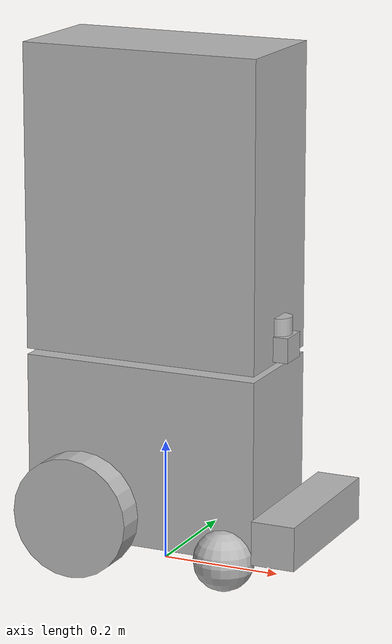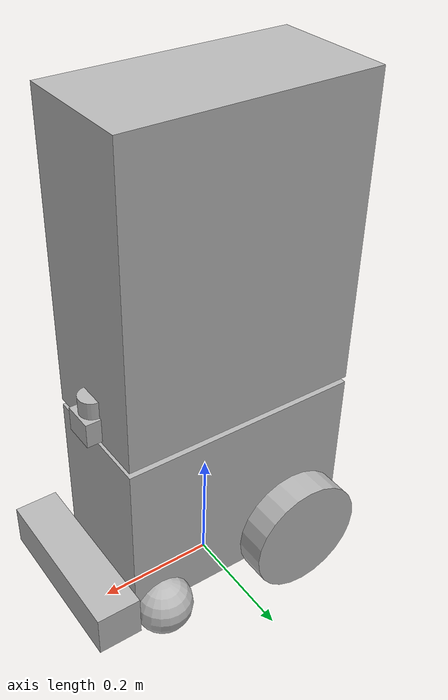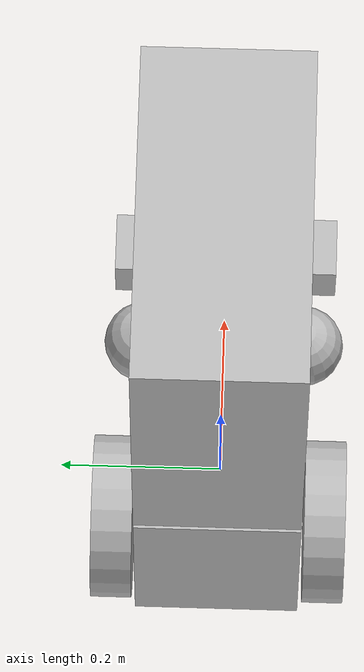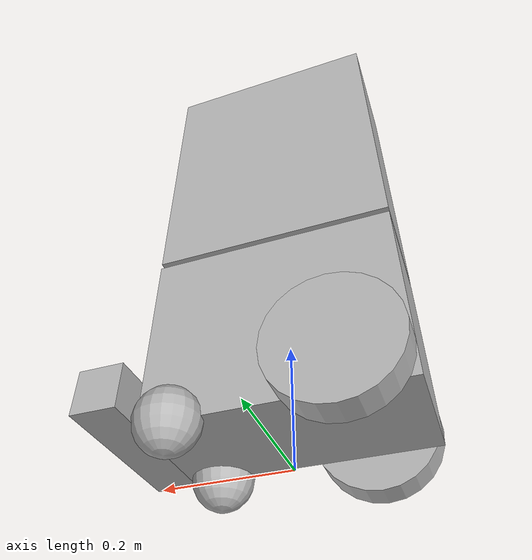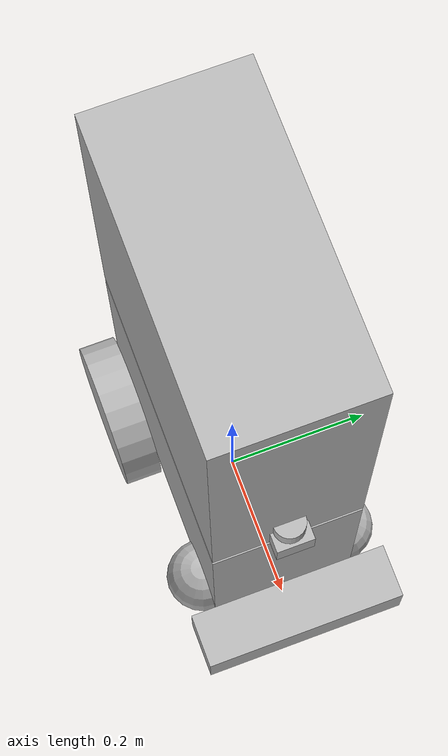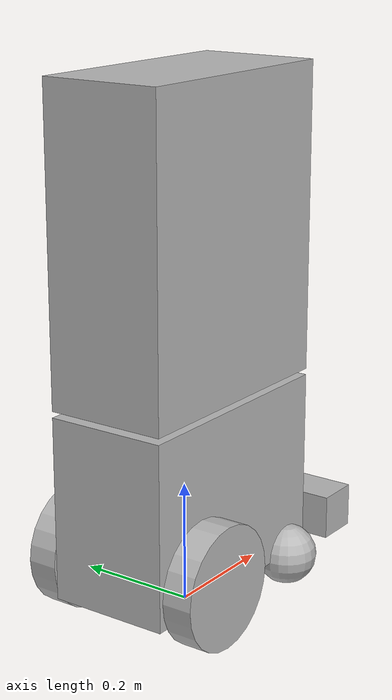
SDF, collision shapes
<?xml version='1.0'?>
<sdf version='1.4'>

	<model name="wip">

		<static>false</static>

<!--- LOWER BODY STATIC START --->
		<link name='lwr_body'>
			<pose>0 0 .2 0 0 0</pose>
      <inertial>
		    <inertia>
		      <ixx>1</ixx>
		      <ixy>0</ixy>
		      <ixz>0</ixz>
		      <iyy>1</iyy>
		      <iyz>0</iyz>
		      <izz>1</izz>
		    </inertia>
      <mass>10.0</mass>
    </inertial>

			<collision name='lwr_body_collision'>
				<geometry>
					<box>
						<size>.4 .2 .3</size>
					</box>
				</geometry>
			</collision>

			<visual name='lwr_body_visual'>
				<geometry>
					<box>
						<size>.4 .2 .3</size>
					</box>
				</geometry>
			</visual>

<!--- LOWER BODY FL WHEEL START --->
		<collision name='FL_wheel_collision'>
				<pose>0.15 -.1 -0.15 0 0 0</pose>
				<geometry>
					<sphere>
						<radius>.05</radius>
					</sphere>
				</geometry>

				<surface>
					<friction>
						<ode>
							<mu>0</mu>
							<mu2>0</mu2>
							<slip1>1.0</slip1>
							<slip2>1.0</slip2>
						</ode>
					</friction>
				</surface>

		</collision>

		<visual name='FL_wheel_visual'>
			<pose>0.15 -.1 -0.15 0 0 0</pose>
			<geometry>
				<sphere>
						<radius>.05</radius>
					</sphere>
			</geometry>
		</visual>
<!--- LOWER BODY FL WHEEL END --->

<!--- LOWER BODY FR WHEEL START --->
		<collision name='FR_wheel_collision'>
				<pose>0.15 .1 -0.15 0 0 0</pose>
				<geometry>
					<sphere>
						<radius>.05</radius>
					</sphere>
				</geometry>

				<surface>
					<friction>
						<ode>
							<mu>0</mu>
							<mu2>0</mu2>
							<slip1>1.0</slip1>
							<slip2>1.0</slip2>
						</ode>
					</friction>
				</surface>

		</collision>

		<visual name='FR_wheel_visual'>
			<pose>0.15 .1 -0.15 0 0 0</pose>
			<geometry>
				<sphere>
						<radius>.05</radius>
					</sphere>
			</geometry>
		</visual>
	</link>

<!--- LOWER BODY FR WHEEL END --->
<!--- LOWER BODY STATIC END --->

<!--- LOWER BODY DYNAMIC START --->
<!--- LOWER BODY BR WHEEL START --->
	<link name="BR_wheel">
		<pose>-0.1 0.13 0.1 0 1.5707 1.5707</pose>

		<collision name="BR_wheel_collision">
			<geometry>
				<cylinder>
						<radius>.1</radius>
						<length>0.05</length>
					</cylinder>
				</geometry>
		</collision>

		<visual name="BR_wheel_visual">
			<geometry>
				<cylinder>
						<radius>.1</radius>
						<length>0.05</length>
				</cylinder>
			</geometry>
		</visual>

	</link>
<!--- LOWER BODY BR WHEEL END --->

<!--- LOWER BODY BR WHEEL HINGE START --->
	<joint type="revolute" name="BR_wheel_hinge">
		<pose>0 0 0 0 0 0</pose>
		<child>BR_wheel</child>
		<parent>lwr_body</parent>
		<axis>
			<xyz>0 1 0</xyz>
		</axis>
	</joint>
<!--- LOWER BODY BR WHEEL HINGE END --->

<!--- LOWER BODY BL WHEEL START --->
	<link name="BL_wheel">
		<pose>-0.1 -0.13 0.1 0 1.5707 1.5707</pose>

		<collision name="BL_wheel_collision">
			<geometry>
				<cylinder>
						<radius>.1</radius>
						<length>0.05</length>
					</cylinder>
				</geometry>
		</collision>

		<visual name="BL_wheel_visual">
			<geometry>
				<cylinder>
						<radius>.1</radius>
						<length>0.05</length>
				</cylinder>
			</geometry>
		</visual>

	</link>
<!--- LOWER BODY BL WHEEL END --->

<!--- LOWER BODY BR WHEEL HINGE START --->
	<joint type="revolute" name="BL_wheel_hinge">
		<pose>0 0 0 0 0 0</pose>
		<child>BL_wheel</child>
		<parent>lwr_body</parent>
		<axis>
			<xyz>0 1 0</xyz>
		</axis>
	</joint>
<!--- LOWER BODY BR WHEEL HINGE END --->

<!--- LOWER BODY DYNAMIC END --->

<!--- UPPER BODY START --->
		<link name='uppr_body'>
			<pose>0 0 .61 0 0 0</pose>

      <inertial>
        <inertia>
          <ixx>1</ixx>
          <ixy>0</ixy>
          <ixz>0</ixz>
          <iyy>1</iyy>
          <iyz>0</iyz>
          <izz>1</izz>
        </inertia>
        <mass>1.0</mass>
      </inertial>

			<collision name='uppr_body_collision'>
				<geometry>
					<box>
						<size>.4 .2 .5</size>
					</box>
				</geometry>
			</collision>

			<visual name='uppr_body_visual'>
				<geometry>
					<box>
						<size>.4 .2 .5</size>
					</box>
				</geometry>
			</visual>
		</link>
	<joint type="revolute" name="hip_joint">
		<pose>0 0 0.4 0 0 0</pose>
		<child>uppr_body</child>
		<parent>lwr_body</parent>
		<axis>
			<xyz>0 0 1</xyz>
			<dynamics>
					<friction>
						10000
					</friction>
			</dynamics>

		<limit>
			<upper>2.96706</upper>
			<lower>-2.96706</lower>
		</limit>
		</axis>

	</joint>

<!--- UPPER BODY END --->

<!--- SENSORS START --->

<!--- HOKUYO START --->
    <include>
      <uri>model://hokuyo2</uri>
      <pose>0.2 0 0.4 0 0 0</pose>
    </include>
    <joint name="hokuyo_joint" type="revolute">
      <child>hokuyo2::link</child>
      <parent>uppr_body</parent>
      <axis>
        <xyz>0 0 1</xyz>
        <limit>
          <upper>0</upper>
          <lower>0</lower>
        </limit>
      </axis>
    </joint>
<!--- HOKUYO END --->

<!--- KINECT / XTION START --->
    <include>
      <uri>model://kinect2</uri>
      <pose>0.25 0 0.1 3.14159 0 0</pose>
    </include>
    <joint name="kinect_joint" type="revolute">
      <child>kinect2::link</child>
      <parent>lwr_body</parent>
      <axis>
        <xyz>0 0 1</xyz>
        <limit>
          <upper>0</upper>
          <lower>0</lower>
        </limit>
      </axis>
    </joint>
<!--- KINECT / XTION END --->

<!--- SENSORS END --->

<!--- CONTROLLER PLUGINS START --->
<plugin name='differential_drive_controller'
              filename='libgazebo_ros_diff_drive.so'>
        <alwaysOn>true</alwaysOn>
        <updateRate>100</updateRate>
        <leftJoint>BL_wheel_hinge</leftJoint>
        <rightJoint>BR_wheel_hinge</rightJoint>
        <wheelSeparation>0.26</wheelSeparation>
        <wheelDiameter>0.1</wheelDiameter>
        <torque>5</torque>
        <commandTopic>cmd_vel</commandTopic>
        <odometryTopic>odom</odometryTopic>
        <odometryFrame>odom</odometryFrame>
        <robotBaseFrame>base_link</robotBaseFrame>
</plugin>

<!--- CONTROLLER PLUGINS END --->

	</model>
</sdf>

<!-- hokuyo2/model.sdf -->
<sdf version="1.4">
  <model name="hokuyo2">
    <pose>0 0 0.035 0 0 0</pose>
    <link name="link">
      <inertial>
        <mass>0.1</mass>
      </inertial>
      <visual name="visual">
        <geometry>
          <mesh>
            <uri>model://hokuyo/meshes/hokuyo.dae</uri>
          </mesh>
        </geometry>
      </visual>
      <collision name="collision-base">
        <pose>0 0 -0.0145 0 0 0</pose>
        <geometry>
          <box>
            <size>0.05 0.05 0.041</size>
          </box>
        </geometry>
      </collision>
      <collision name="collision-top">
        <pose>0 0 0.0205 0 0 0</pose>
        <geometry>
          <cylinder>
            <radius>0.021</radius>
            <length>0.029</length>
          </cylinder>
        </geometry>
      </collision>
      <sensor name="laser" type="ray">
        <pose>0.01 0 0.0175 0 -0 0</pose>
        <ray>
          <scan>
            <horizontal>
              <samples>640</samples>
              <resolution>1</resolution>
              <min_angle>-2.26889</min_angle>
              <max_angle>2.268899</max_angle>
            </horizontal>
          </scan>
          <range>
            <min>0.08</min>
            <max>10</max>
            <resolution>0.01</resolution>
          </range>
        </ray>

				<plugin name="laser" filename="libgazebo_ros_laser.so">
					<topicName>/scan</topicName>
					<frameName>base_laser</frameName>
					<alwaysOn>true</alwaysOn>
					<updateRate>20.0</updateRate>
				</plugin>

        <always_on>1</always_on>
        <update_rate>30</update_rate>
        <visualize>true</visualize>
      </sensor>
    </link>
  </model>
</sdf>

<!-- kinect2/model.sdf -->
<sdf version="1.5">
  <model name="kinect2">
    <pose>0 0 0.036 0 0 0</pose>
    <link name="link">
      <inertial>
        <mass>0.1</mass>
      </inertial>
      <collision name="collision">
        <geometry>
          <box>
            <size>0.073000 0.276000 0.072000</size>
          </box>
        </geometry>
      </collision>
      <visual name="visual">
        <geometry>
          <mesh>
            <uri>model://kinect/meshes/kinect.dae</uri>
          </mesh>
        </geometry>
      </visual>

      <sensor name="camera" type="depth">
        <update_rate>20</update_rate>
        <camera>
          <horizontal_fov>1.047198</horizontal_fov>
          <image>
            <width>640</width>
            <height>480</height>
            <format>R8G8B8</format>
          </image>
          <clip>
            <near>0.05</near>
            <far>3</far>
          </clip>
        </camera>

        <visualize>true</visualize>

        <plugin name="kinect" filename="libgazebo_ros_openni_kinect.so">
          <cameraName>kinect2</cameraName>
          <alwaysOn>true</alwaysOn>
          <updateRate>20.0</updateRate>
          <imageTopicName>rgb/image_raw</imageTopicName>
          <depthImageTopicName>depth/image_raw</depthImageTopicName>
          <pointCloudTopicName>depth/points</pointCloudTopicName>
          <cameraInfoTopicName>rgb/camera_info</cameraInfoTopicName>
          <depthImageCameraInfoTopicName>depth/camera_info</depthImageCameraInfoTopicName>
          <frameName>kinect_frame</frameName>
          <baseline>0.1</baseline>
          <distortion_k1>0.0</distortion_k1>
          <distortion_k2>0.0</distortion_k2>
          <distortion_k3>0.0</distortion_k3>
          <distortion_t1>0.0</distortion_t1>
          <distortion_t2>0.0</distortion_t2>
          <pointCloudCutoff>0.5</pointCloudCutoff>
          <pointCloudCutoffMax>5.0</pointCloudCutoffMax>
        </plugin>

      </sensor>
    </link>
  </model>
</sdf>
